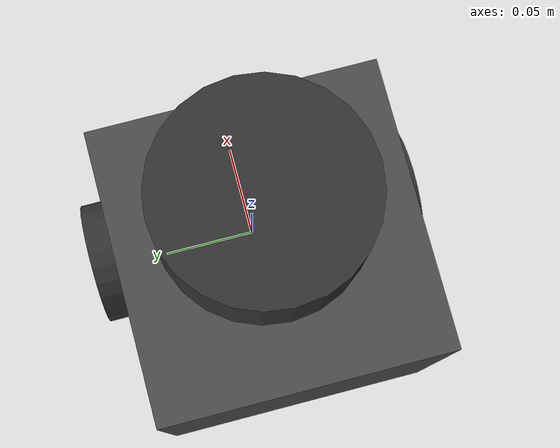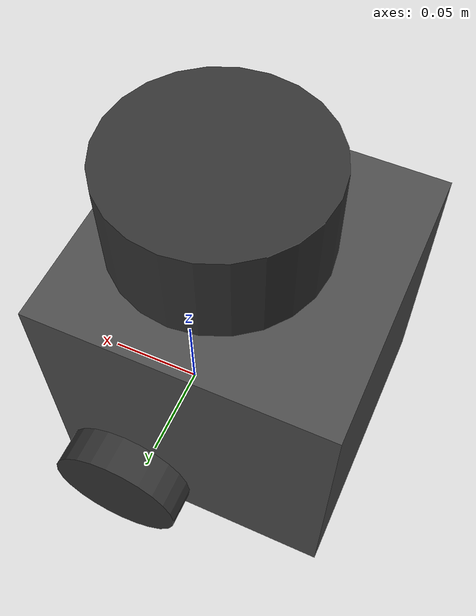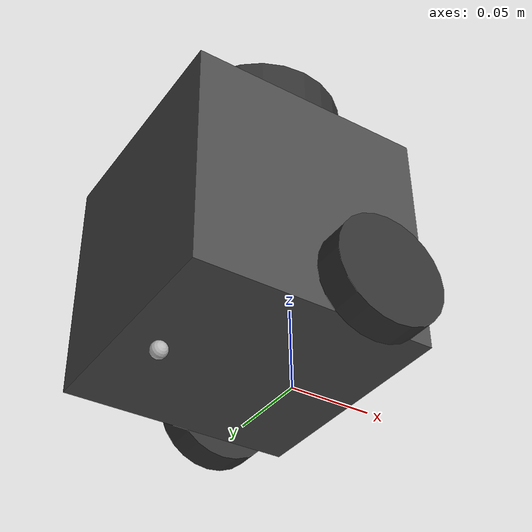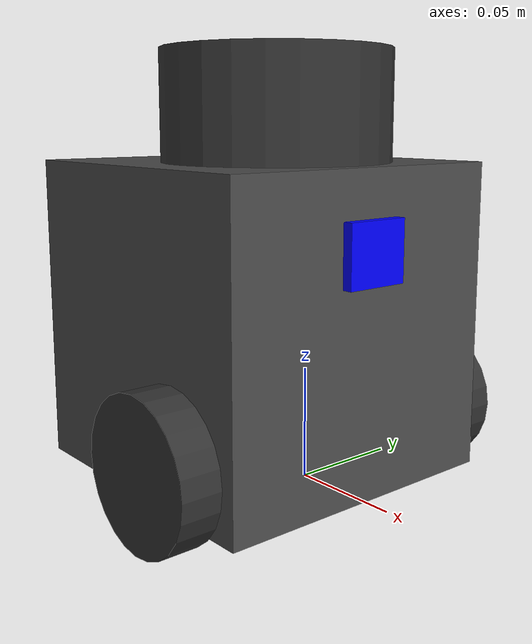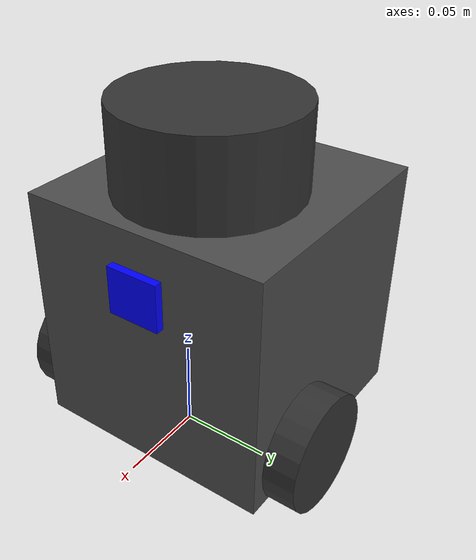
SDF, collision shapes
<?xml version="1.0" ?>
<sdf version="1.6">
  <model name="turtlebot3_burger_cam">
    <pose>0.0 0.0 0.0 0.0 0.0 0.0</pose>

    <link name="base_footprint"/>

    <link name="base_link">

      <inertial>
        <pose>-0.032 0 0.070 0 0 0</pose>
        <inertia>
          <ixx>7.2397393e-01</ixx>
          <ixy>4.686399e-10</ixy>
          <ixz>-1.09525703e-08</ixz>
          <iyy>7.2397393e-01</iyy>
          <iyz>2.8582649e-09</iyz>
          <izz>6.53050163e-01</izz>
        </inertia>
        <mass>8.2573504e-01</mass>
      </inertial>

      <collision name="base_collision">
        <pose>-0.032 0 0.070 0 0 0</pose>
        <geometry>
          <box>
            <size>0.140 0.140 0.140</size>
          </box>
        </geometry>
      </collision>

      <visual name="base_visual">
        <pose>-0.032 0 0 0 0 0</pose>
        <geometry>
          <mesh>
            <uri>model://turtlebot3_common/meshes/bases/burger_base.stl</uri>
            <scale>0.001 0.001 0.001</scale>
          </mesh>
        </geometry>
        <material>
          <ambient>0.3 0.3 0.3 1.0</ambient>
          <diffuse>0.3 0.3 0.3 1.0</diffuse>
        </material>
      </visual>
    </link>

    <link name="imu_link">
      <sensor name="tb3_imu" type="imu">
        <always_on>true</always_on>
        <update_rate>200</update_rate>
        <topic>imu</topic>
        <imu>
          <angular_velocity>
            <x>
              <noise type="gaussian">
                <mean>0.0</mean>
                <stddev>2e-4</stddev>
              </noise>
            </x>
            <y>
              <noise type="gaussian">
                <mean>0.0</mean>
                <stddev>2e-4</stddev>
              </noise>
            </y>
            <z>
              <noise type="gaussian">
                <mean>0.0</mean>
                <stddev>2e-4</stddev>
              </noise>
            </z>
          </angular_velocity>
          <linear_acceleration>
            <x>
              <noise type="gaussian">
                <mean>0.0</mean>
                <stddev>1.7e-2</stddev>
              </noise>
            </x>
            <y>
              <noise type="gaussian">
                <mean>0.0</mean>
                <stddev>1.7e-2</stddev>
              </noise>
            </y>
            <z>
              <noise type="gaussian">
                <mean>0.0</mean>
                <stddev>1.7e-2</stddev>
              </noise>
            </z>
          </linear_acceleration>
        </imu>
      </sensor>
    </link>

    <link name="base_scan">
      <inertial>
        <pose>-0.020 0 0.161 0 0 0</pose>
        <inertia>
          <ixx>0.001</ixx>
          <ixy>0.000</ixy>
          <ixz>0.000</ixz>
          <iyy>0.001</iyy>
          <iyz>0.000</iyz>
          <izz>0.001</izz>
        </inertia>
        <mass>0.114</mass>
      </inertial>

      <collision name="lidar_sensor_collision">
        <pose>-0.020 0 0.161 0 0 0</pose>
        <geometry>
          <cylinder>
            <radius>0.0508</radius>
            <length>0.055</length>
          </cylinder>
        </geometry>
      </collision>

      <visual name="lidar_sensor_visual">
        <pose>-0.032 0 0.171 0 0 0</pose>
        <geometry>
          <mesh>
            <uri>model://turtlebot3_common/meshes/sensors/lds.stl</uri>
            <scale>0.001 0.001 0.001</scale>
          </mesh>
        </geometry>
        <material>
          <ambient>0.2 0.2 0.2 1.0</ambient>
          <diffuse>0.2 0.2 0.2 1.0</diffuse>
        </material>
      </visual>

      <sensor name="hls_lfcd_lds" type="gpu_lidar">
        <always_on>true</always_on>
        <visualize>false</visualize>
        <pose>-0.032 0 0.171 0 0 0</pose>
        <update_rate>5</update_rate>
        <topic>scan</topic>
        <gz_frame_id>base_scan</gz_frame_id>
        <lidar>
          <scan>
            <horizontal>
              <samples>360</samples>
              <resolution>1.000000</resolution>
              <min_angle>0.000000</min_angle>
              <max_angle>6.280000</max_angle>
            </horizontal>
          </scan>
          <range>
            <min>0.120000</min>
            <max>3.5</max>
            <resolution>0.015000</resolution>
          </range>
          <noise>
            <type>gaussian</type>
            <mean>0.0</mean>
            <stddev>0.01</stddev>
          </noise>
        </lidar>
      </sensor>
    </link>

    <link name="wheel_left_link">

      <inertial>
        <pose>0 0.08 0.023 -1.57 0 0</pose>
        <inertia>
          <ixx>1.8158194e-03</ixx>
          <ixy>-9.3392e-12</ixy>
          <ixz>1.04909e-11</ixz>
          <iyy>3.2922126e-03</iyy>
          <iyz>5.75694e-11</iyz>
          <izz>1.8158194e-03</izz>
        </inertia>
        <mass>2.8498940e-02</mass>
      </inertial>

      <collision name="wheel_left_collision">
        <pose>0 0.08 0.023 -1.57 0 0</pose>
        <geometry>
          <cylinder>
            <radius>0.033</radius>
            <length>0.018</length>
          </cylinder>
        </geometry>
        <surface>
          <!-- This friction pamareter don't contain reliable data!! -->
          <friction>
            <ode>
              <mu>100000.0</mu>
              <mu2>100000.0</mu2>
              <fdir1>0 0 0</fdir1>
              <slip1>0.0</slip1>
              <slip2>0.0</slip2>
            </ode>
          </friction>
          <contact>
            <ode>
              <soft_cfm>0</soft_cfm>
              <soft_erp>0.2</soft_erp>
              <kp>1e+5</kp>
              <kd>1</kd>
              <max_vel>0.01</max_vel>
              <min_depth>0.001</min_depth>
            </ode>
          </contact>
        </surface>
      </collision>

      <visual name="wheel_left_visual">
        <pose>0 0.08 0.023 0 0 0</pose>
        <geometry>
          <mesh>
            <uri>model://turtlebot3_common/meshes/wheels/left_tire.stl</uri>
            <scale>0.001 0.001 0.001</scale>
          </mesh>
        </geometry>
        <material>
          <ambient>0.2 0.2 0.2 1.0</ambient>
          <diffuse>0.2 0.2 0.2 1.0</diffuse>
        </material>
      </visual>
    </link>

    <link name="wheel_right_link">

      <inertial>
        <pose>0.0 -0.08 0.023 -1.57 0 0</pose>
        <inertia>
          <ixx>1.8158194e-03</ixx>
          <ixy>-9.3392e-12</ixy>
          <ixz>1.04909e-11</ixz>
          <iyy>3.2922126e-03</iyy>
          <iyz>5.75694e-11</iyz>
          <izz>1.8158194e-03</izz>
        </inertia>
        <mass>2.8498940e-02</mass>
      </inertial>

      <collision name="wheel_right_collision">
        <pose>0.0 -0.08 0.023 -1.57 0 0</pose>
        <geometry>
          <cylinder>
            <radius>0.033</radius>
            <length>0.018</length>
          </cylinder>
        </geometry>
        <surface>
          <!-- This friction pamareter don't contain reliable data!! -->
          <friction>
            <ode>
              <mu>100000.0</mu>
              <mu2>100000.0</mu2>
              <fdir1>0 0 0</fdir1>
              <slip1>0.0</slip1>
              <slip2>0.0</slip2>
            </ode>
          </friction>
          <contact>
            <ode>
              <soft_cfm>0</soft_cfm>
              <soft_erp>0.2</soft_erp>
              <kp>1e+5</kp>
              <kd>1</kd>
              <max_vel>0.01</max_vel>
              <min_depth>0.001</min_depth>
            </ode>
          </contact>
        </surface>
      </collision>

      <visual name="wheel_right_visual">
        <pose>0.0 -0.08 0.023 0 0 0</pose>
        <geometry>
          <mesh>
            <uri>model://turtlebot3_common/meshes/wheels/right_tire.stl</uri>
            <scale>0.001 0.001 0.001</scale>
          </mesh>
        </geometry>
        <material>
          <ambient>0.2 0.2 0.2 1.0</ambient>
          <diffuse>0.2 0.2 0.2 1.0</diffuse>
        </material>
      </visual>
    </link>

    <link name='caster_back_link'>
      <pose>-0.081 0 -0.004 -1.57 0 0</pose>
      <inertial>
        <mass>0.005</mass>
        <inertia>
          <ixx>0.001</ixx>
          <ixy>0.000</ixy>
          <ixz>0.000</ixz>
          <iyy>0.001</iyy>
          <iyz>0.000</iyz>
          <izz>0.001</izz>
        </inertia>
      </inertial>
      <collision name='collision'>
        <geometry>
          <sphere>
            <radius>0.005000</radius>
          </sphere>
        </geometry>
        <surface>
          <contact>
            <ode>
              <soft_cfm>0</soft_cfm>
              <soft_erp>0.2</soft_erp>
              <kp>1e+5</kp>
              <kd>1</kd>
              <max_vel>0.01</max_vel>
              <min_depth>0.001</min_depth>
            </ode>
          </contact>
        </surface>
      </collision>
    </link>

    <link name="camera_link">
      <inertial>
        <pose>0.076 0.0 0.093 0 0 0</pose>
        <inertia>
          <ixx>0.001</ixx>
          <ixy>0.000</ixy>
          <ixz>0.000</ixz>
          <iyy>0.001</iyy>
          <iyz>0.000</iyz>
          <izz>0.001</izz>
        </inertia>
        <mass>0.035</mass>
      </inertial>

      <pose>0.03 0.0 0.093 0 0 0</pose>

      <!-- 카메라 visual 추가! -->
      <visual name="camera_visual">
        <pose>0.002 0.000 0.013 0 0 0</pose>
        <geometry>
          <box>
            <size>0.015 0.030 0.027</size>
          </box>
        </geometry>
        <material>
          <ambient>0.0 0.0 1.0 1.0</ambient>
          <diffuse>0.0 0.0 1.0 1.0</diffuse>
        </material>
      </visual>

      <!-- 카메라 collision 추가 -->
      <collision name="camera_collision">
        <pose>0.005 0.000 0.013 0 0 0</pose>
        <geometry>
          <box>
            <size>0.015 0.030 0.027</size>
          </box>
        </geometry>
      </collision>

      <!-- 기존 센서 부분은 그대로 -->
      <sensor name="camera" type="camera">
        <always_on>true</always_on>
        <visualize>true</visualize>
        <update_rate>30</update_rate>
        <topic>camera/image_raw</topic>
        <gz_frame_id>camera_rgb_frame</gz_frame_id>
        <camera name="pi_cam">
          <camera_info_topic>camera/camera_info</camera_info_topic>
          <horizontal_fov>1.047</horizontal_fov>
          <image>
            <width>320</width>
            <height>240</height>
            <format>R8G8B8</format>
          </image>
          <clip>
            <near>0.1</near>
            <far>100</far>
          </clip>
          <lens>
            <type>custom</type>
            <custom_function>
              <c1>1.05</c1>
              <c2>4</c2>
              <f>1.0</f>
              <fun>tan</fun>
            </custom_function>
            <scale_to_hfov>true</scale_to_hfov>
            <cutoff_angle>3.1415</cutoff_angle>
            <env_texture_size>512</env_texture_size>
          </lens>
        </camera>
      </sensor>
    </link>

    <joint name="base_joint" type="fixed">
      <parent>base_footprint</parent>
      <child>base_link</child>
      <pose>0.0 0.0 0.010 0 0 0</pose>
    </joint>

    <joint name="wheel_left_joint" type="revolute">
      <parent>base_link</parent>
      <child>wheel_left_link</child>
      <pose>0.0 0.08 0.023 -1.57 0 0</pose>
      <axis>
        <xyz>0 0 1</xyz>
        <limit>
          <effort>20</effort>
        </limit>
      </axis>
    </joint>

    <joint name="wheel_right_joint" type="revolute">
      <parent>base_link</parent>
      <child>wheel_right_link</child>
      <pose>0.0 -0.08 0.023 -1.57 0 0</pose>
      <axis>
        <xyz>0 0 1</xyz>
        <limit>
          <effort>20</effort>
        </limit>
      </axis>
    </joint>

    <joint name='caster_back_joint' type='ball'>
      <parent>base_link</parent>
      <child>caster_back_link</child>
    </joint>

    <joint name="imu_joint" type="fixed">
      <parent>base_link</parent>
      <child>imu_link</child>
      <pose>-0.032 0 0.068 0 0 0</pose>
      <axis>
        <xyz>0 0 1</xyz>
      </axis>
    </joint>

    <joint name="lidar_joint" type="fixed">
      <parent>base_link</parent>
      <child>base_scan</child>
      <pose>-0.032 0 0.171 0 0 0</pose>
      <axis>
        <xyz>0 0 1</xyz>
      </axis>
    </joint>

    <joint name="camera_joint" type="fixed">
      <parent>base_link</parent>
      <child>camera_link</child>
      <pose>0.001 -0.000 0.110 0 0 0</pose>
      <axis>
        <xyz>0 0 1</xyz>
      </axis>
    </joint>

    <plugin filename="gz-sim-diff-drive-system" name="gz::sim::systems::DiffDrive">

      <!-- wheels -->
      <left_joint>wheel_left_joint</left_joint>
      <right_joint>wheel_right_joint</right_joint>

      <!-- kinematics -->
      <wheel_separation>0.160</wheel_separation>
      <wheel_radius>0.033</wheel_radius>

      <!-- limits -->
      <max_linear_acceleration>1.0</max_linear_acceleration>

       <topic>cmd_vel</topic>

       <odom_topic>odom</odom_topic>
       <frame_id>odom</frame_id>
       <child_frame_id>base_footprint</child_frame_id>
       <odom_publisher_frequency>30</odom_publisher_frequency>

       <tf_topic>/tf</tf_topic>

    </plugin>

    <plugin filename="gz-sim-joint-state-publisher-system" name="gz::sim::systems::JointStatePublisher">
      <topic>joint_states</topic>
      <joint_name>wheel_left_joint</joint_name>
      <joint_name>wheel_right_joint</joint_name>
    </plugin>

  </model>
</sdf>
